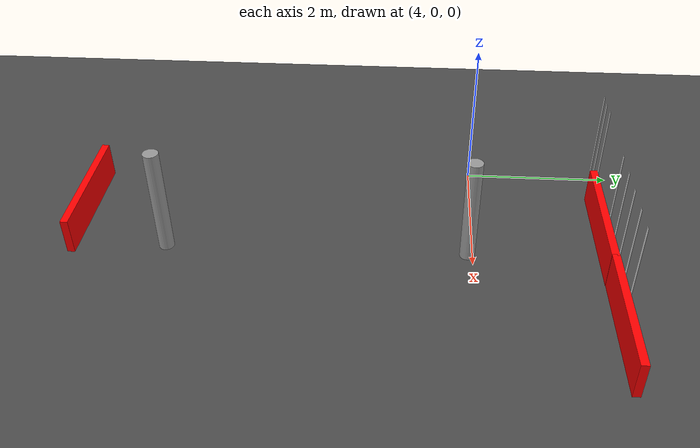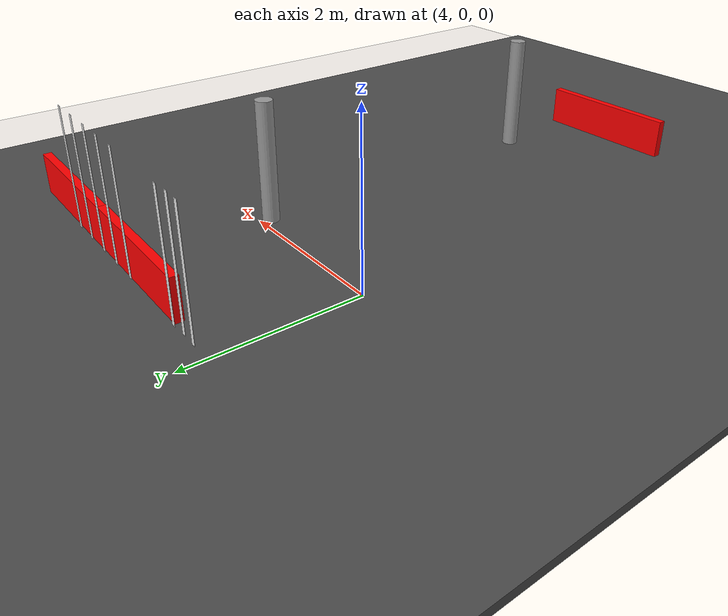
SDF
<sdf version="1.7">
 <world name="default">
  <model name="ground_plane">
   <static>1</static>
   <link name="link">
    <collision name="collision">
     <geometry><plane><normal>0 0 1</normal><size>100 100</size></plane></geometry>
     <surface><friction><ode><mu>100</mu><mu2>50</mu2></ode></friction></surface>
    </collision>
    <visual name="visual">
     <cast_shadows>0</cast_shadows>
     <geometry><plane><normal>0 0 1</normal><size>100 100</size></plane></geometry>
     <material>
      <script><uri>file://media/materials/scripts/gazebo.material</uri><name>Gazebo/Grey</name></script>
     </material>
    </visual>
   </link>
  </model>
  <model name="asphalt_plane">
   <static>1</static>
   <link name="link">
    <collision name="collision"><geometry><box><size>20 20 0.1</size></box></geometry></collision>
    <visual name="visual">
     <cast_shadows>0</cast_shadows>
     <geometry><box><size>20 20 0.1</size></box></geometry>
     <material>
      <script>
       <uri>model://asphalt_plane/materials/scripts</uri>
       <uri>model://asphalt_plane/materials/textures</uri>
       <name>vrc/asphalt</name>
      </script>
     </material>
    </visual>
    <velocity_decay><linear>0</linear><angular>0</angular></velocity_decay>
   </link>
   <pose>0.000359 -0.189252 0 0 -0 0</pose>
  </model>
  <model name="circular_reflector">
   <static>1</static>
   <pose>5.90778 -4.03761 0 0 -0 0</pose>
   <link name="link">
    <inertial>
     <mass>1</mass>
     <inertia><ixx>0</ixx><ixy>0</ixy><ixz>0</ixz><iyy>0</iyy><iyz>0</iyz><izz>0</izz></inertia>
    </inertial>
    <collision name="collision">
     <laser_retro>1000</laser_retro>
     <geometry><cylinder><radius>0.05</radius><length>1</length></cylinder></geometry>
    </collision>
    <visual name="visual">
     <geometry><cylinder><radius>0.1</radius><length>3</length></cylinder></geometry>
     <material>
      <script><name>Gazebo/Grey</name><uri>file://media/materials/scripts/gazebo.material</uri></script>
      <ambient>1 1 1 1</ambient>
      <diffuse>1 1 1 1</diffuse>
      <specular>1 1 1 1</specular>
      <emissive>1 1 1 1</emissive>
     </material>
     <laser_retro>1000</laser_retro>
    </visual>
   </link>
  </model>
  <model name="circular_reflector_0">
   <static>1</static>
   <pose>5.87326 -0.076984 0 0 -0 0</pose>
   <link name="link">
    <inertial>
     <mass>1</mass>
     <inertia><ixx>0</ixx><ixy>0</ixy><ixz>0</ixz><iyy>0</iyy><iyz>0</iyz><izz>0</izz></inertia>
    </inertial>
    <collision name="collision">
     <laser_retro>1000</laser_retro>
     <geometry><cylinder><radius>0.05</radius><length>1</length></cylinder></geometry>
    </collision>
    <visual name="visual">
     <geometry><cylinder><radius>0.1</radius><length>3</length></cylinder></geometry>
     <material>
      <script><name>Gazebo/Grey</name><uri>file://media/materials/scripts/gazebo.material</uri></script>
      <ambient>1 1 1 1</ambient>
      <diffuse>1 1 1 1</diffuse>
      <specular>1 1 1 1</specular>
      <emissive>1 1 1 1</emissive>
     </material>
     <laser_retro>1000</laser_retro>
    </visual>
   </link>
  </model>
  <model name="barrier_w_reflector_clone_12">
   <static>1</static>
   <pose>5.2178 -5.2582 0.292208 0 -0 0</pose>
   <link name="link">
    <inertial>
     <mass>1</mass>
     <inertia><ixx>0</ixx><ixy>0</ixy><ixz>0</ixz><iyy>0</iyy><iyz>0</iyz><izz>0</izz></inertia>
    </inertial>
    <collision name="collision">
     <laser_retro>1000</laser_retro>
     <geometry><box><size>1.8 0.1 0.5</size></box></geometry>
    </collision>
    <visual name="visual">
     <geometry><box><size>1.8 0.1 0.5</size></box></geometry>
     <material>
      <ambient>1 0 0 1</ambient>
      <diffuse>1 0 0 1</diffuse>
      <specular>1 0 0 1</specular>
      <emissive>1 0 0 1</emissive>
     </material>
     <laser_retro>1000</laser_retro>
    </visual>
   </link>
  </model>
  <model name="barrier_clone_1">
   <static>1</static>
   <pose>5.4756 1.67205 0.312489 0 -0 0</pose>
   <link name="link">
    <inertial>
     <mass>1</mass>
     <inertia><ixx>0</ixx><ixy>0</ixy><ixz>0</ixz><iyy>0</iyy><iyz>0</iyz><izz>0</izz></inertia>
    </inertial>
    <collision name="collision"><geometry><box><size>1.8 0.1 0.5</size></box></geometry></collision>
    <visual name="visual">
     <geometry><box><size>1.8 0.1 0.5</size></box></geometry>
     <material>
      <ambient>1 0 0 1</ambient>
      <diffuse>1 0 0 1</diffuse>
      <specular>1 0 0 1</specular>
      <emissive>1 0 0 1</emissive>
     </material>
    </visual>
   </link>
  </model>
  <model name="barrier_clone_2">
   <static>1</static>
   <pose>7.25455 1.6762 0.312489 0 -0 0</pose>
   <link name="link">
    <inertial>
     <mass>1</mass>
     <inertia><ixx>0</ixx><ixy>0</ixy><ixz>0</ixz><iyy>0</iyy><iyz>0</iyz><izz>0</izz></inertia>
    </inertial>
    <collision name="collision"><geometry><box><size>1.8 0.1 0.5</size></box></geometry></collision>
    <visual name="visual">
     <geometry><box><size>1.8 0.1 0.5</size></box></geometry>
     <material>
      <ambient>1 0 0 1</ambient>
      <diffuse>1 0 0 1</diffuse>
      <specular>1 0 0 1</specular>
      <emissive>1 0 0 1</emissive>
     </material>
    </visual>
   </link>
  </model>
  <model name="reflective_tape_5cm">
   <static>1</static>
   <pose>7.01538 1.73738 0 0 -0 0</pose>
   <link name="link">
    <inertial>
     <mass>0.01</mass>
     <inertia><ixx>1e-06</ixx><ixy>0</ixy><ixz>0</ixz><iyy>1e-06</iyy><iyz>0</iyz><izz>1e-06</izz></inertia>
    </inertial>
    <collision name="collision">
     <laser_retro>1000</laser_retro>
     <geometry><box><size>0.05 0.005 3</size></box></geometry>
    </collision>
    <visual name="visual">
     <geometry><box><size>0.05 0.005 3</size></box></geometry>
     <material>
      <script><name>Gazebo/WhiteGlow</name><uri>file://media/materials/scripts/gazebo.material</uri></script>
      <ambient>1 1 1 1</ambient>
      <diffuse>1 1 1 1</diffuse>
      <specular>1 1 1 1</specular>
      <emissive>1 1 1 1</emissive>
     </material>
     <laser_retro>1000</laser_retro>
    </visual>
   </link>
  </model>
  <model name="reflective_tape_5cm_clone">
   <static>1</static>
   <pose>6.67563 1.73468 0 0 -0 0</pose>
   <link name="link">
    <inertial>
     <mass>0.01</mass>
     <inertia><ixx>1e-06</ixx><ixy>0</ixy><ixz>0</ixz><iyy>1e-06</iyy><iyz>0</iyz><izz>1e-06</izz></inertia>
    </inertial>
    <collision name="collision">
     <laser_retro>1000</laser_retro>
     <geometry><box><size>0.05 0.005 3</size></box></geometry>
    </collision>
    <visual name="visual">
     <geometry><box><size>0.05 0.005 3</size></box></geometry>
     <material>
      <script><name>Gazebo/WhiteGlow</name><uri>file://media/materials/scripts/gazebo.material</uri></script>
      <ambient>1 1 1 1</ambient>
      <diffuse>1 1 1 1</diffuse>
      <specular>1 1 1 1</specular>
      <emissive>1 1 1 1</emissive>
     </material>
     <laser_retro>1000</laser_retro>
    </visual>
   </link>
  </model>
  <model name="reflective_tape_5cm_clone_0">
   <static>1</static>
   <pose>6.32058 1.7299 0 0 -0 0</pose>
   <link name="link">
    <inertial>
     <mass>0.01</mass>
     <inertia><ixx>1e-06</ixx><ixy>0</ixy><ixz>0</ixz><iyy>1e-06</iyy><iyz>0</iyz><izz>1e-06</izz></inertia>
    </inertial>
    <collision name="collision">
     <laser_retro>1000</laser_retro>
     <geometry><box><size>0.05 0.005 3</size></box></geometry>
    </collision>
    <visual name="visual">
     <geometry><box><size>0.05 0.005 3</size></box></geometry>
     <material>
      <script><name>Gazebo/WhiteGlow</name><uri>file://media/materials/scripts/gazebo.material</uri></script>
      <ambient>1 1 1 1</ambient>
      <diffuse>1 1 1 1</diffuse>
      <specular>1 1 1 1</specular>
      <emissive>1 1 1 1</emissive>
     </material>
     <laser_retro>1000</laser_retro>
    </visual>
   </link>
  </model>
  <model name="reflective_tape_5cm_clone_1">
   <static>1</static>
   <pose>5.97357 1.72716 0 0 -0 0</pose>
   <link name="link">
    <inertial>
     <mass>0.01</mass>
     <inertia><ixx>1e-06</ixx><ixy>0</ixy><ixz>0</ixz><iyy>1e-06</iyy><iyz>0</iyz><izz>1e-06</izz></inertia>
    </inertial>
    <collision name="collision">
     <laser_retro>1000</laser_retro>
     <geometry><box><size>0.05 0.005 3</size></box></geometry>
    </collision>
    <visual name="visual">
     <geometry><box><size>0.05 0.005 3</size></box></geometry>
     <material>
      <script><name>Gazebo/WhiteGlow</name><uri>file://media/materials/scripts/gazebo.material</uri></script>
      <ambient>1 1 1 1</ambient>
      <diffuse>1 1 1 1</diffuse>
      <specular>1 1 1 1</specular>
      <emissive>1 1 1 1</emissive>
     </material>
     <laser_retro>1000</laser_retro>
    </visual>
   </link>
  </model>
  <model name="reflective_tape_5cm_clone_2">
   <static>1</static>
   <pose>5.61648 1.72472 0 0 -0 0</pose>
   <link name="link">
    <inertial>
     <mass>0.01</mass>
     <inertia><ixx>1e-06</ixx><ixy>0</ixy><ixz>0</ixz><iyy>1e-06</iyy><iyz>0</iyz><izz>1e-06</izz></inertia>
    </inertial>
    <collision name="collision">
     <laser_retro>1000</laser_retro>
     <geometry><box><size>0.05 0.005 3</size></box></geometry>
    </collision>
    <visual name="visual">
     <geometry><box><size>0.05 0.005 3</size></box></geometry>
     <material>
      <script><name>Gazebo/WhiteGlow</name><uri>file://media/materials/scripts/gazebo.material</uri></script>
      <ambient>1 1 1 1</ambient>
      <diffuse>1 1 1 1</diffuse>
      <specular>1 1 1 1</specular>
      <emissive>1 1 1 1</emissive>
     </material>
     <laser_retro>1000</laser_retro>
    </visual>
   </link>
  </model>
  <model name="reflective_tape_5cm_clone_2_clone">
   <static>1</static>
   <pose>4.57781 1.73369 0 0 -0 0</pose>
   <link name="link">
    <inertial>
     <mass>0.01</mass>
     <inertia><ixx>1e-06</ixx><ixy>0</ixy><ixz>0</ixz><iyy>1e-06</iyy><iyz>0</iyz><izz>1e-06</izz></inertia>
    </inertial>
    <collision name="collision">
     <laser_retro>1000</laser_retro>
     <geometry><box><size>0.05 0.005 3</size></box></geometry>
    </collision>
    <visual name="visual">
     <geometry><box><size>0.05 0.005 3</size></box></geometry>
     <material>
      <script><name>Gazebo/WhiteGlow</name><uri>file://media/materials/scripts/gazebo.material</uri></script>
      <ambient>1 1 1 1</ambient>
      <diffuse>1 1 1 1</diffuse>
      <specular>1 1 1 1</specular>
      <emissive>1 1 1 1</emissive>
     </material>
     <laser_retro>1000</laser_retro>
    </visual>
   </link>
  </model>
  <model name="reflective_tape_5cm_clone_2_clone_0">
   <static>1</static>
   <pose>4.38773 1.71961 0 0 -0 0</pose>
   <link name="link">
    <inertial>
     <mass>0.01</mass>
     <inertia><ixx>1e-06</ixx><ixy>0</ixy><ixz>0</ixz><iyy>1e-06</iyy><iyz>0</iyz><izz>1e-06</izz></inertia>
    </inertial>
    <collision name="collision">
     <laser_retro>1000</laser_retro>
     <geometry><box><size>0.05 0.005 3</size></box></geometry>
    </collision>
    <visual name="visual">
     <geometry><box><size>0.05 0.005 3</size></box></geometry>
     <material>
      <script><name>Gazebo/WhiteGlow</name><uri>file://media/materials/scripts/gazebo.material</uri></script>
      <ambient>1 1 1 1</ambient>
      <diffuse>1 1 1 1</diffuse>
      <specular>1 1 1 1</specular>
      <emissive>1 1 1 1</emissive>
     </material>
     <laser_retro>1000</laser_retro>
    </visual>
   </link>
  </model>
  <model name="reflective_tape_5cm_clone_2_clone_1">
   <static>1</static>
   <pose>4.19429 1.72222 0 0 -0 0</pose>
   <link name="link">
    <inertial>
     <mass>0.01</mass>
     <inertia><ixx>1e-06</ixx><ixy>0</ixy><ixz>0</ixz><iyy>1e-06</iyy><iyz>0</iyz><izz>1e-06</izz></inertia>
    </inertial>
    <collision name="collision">
     <laser_retro>1000</laser_retro>
     <geometry><box><size>0.05 0.005 3</size></box></geometry>
    </collision>
    <visual name="visual">
     <geometry><box><size>0.05 0.005 3</size></box></geometry>
     <material>
      <script><name>Gazebo/WhiteGlow</name><uri>file://media/materials/scripts/gazebo.material</uri></script>
      <ambient>1 1 1 1</ambient>
      <diffuse>1 1 1 1</diffuse>
      <specular>1 1 1 1</specular>
      <emissive>1 1 1 1</emissive>
     </material>
     <laser_retro>1000</laser_retro>
    </visual>
   </link>
  </model>
 </world>
</sdf>
